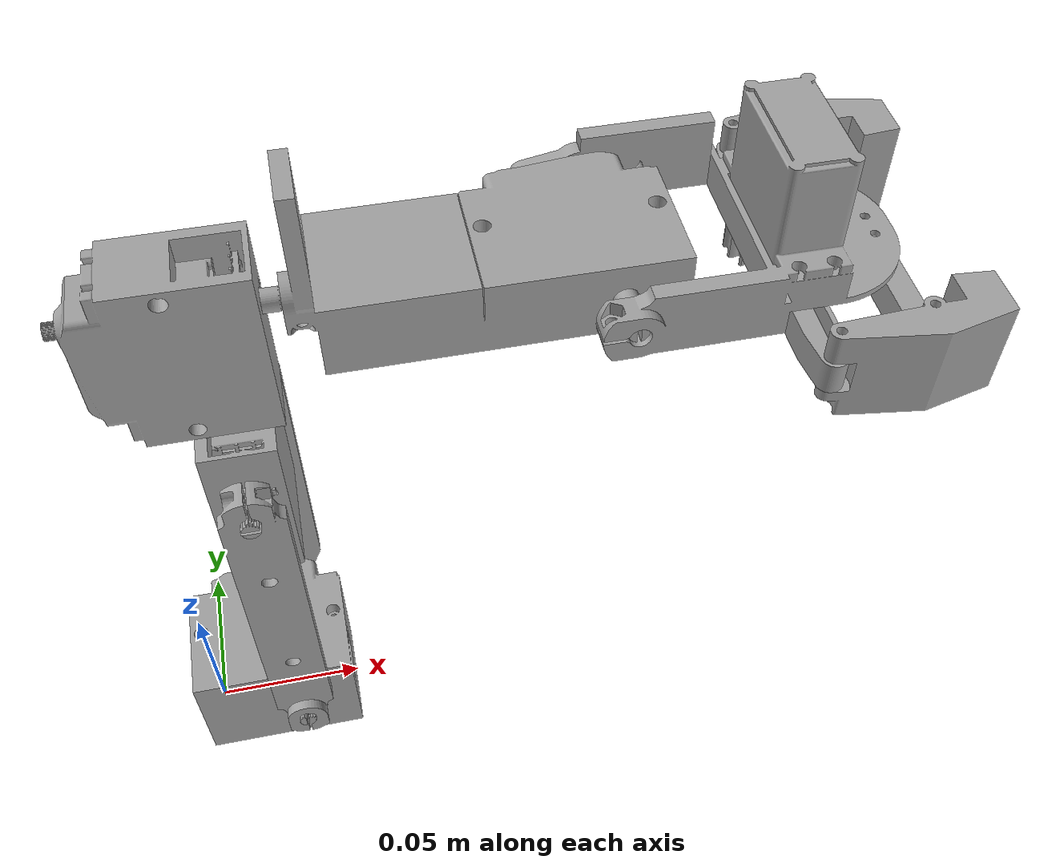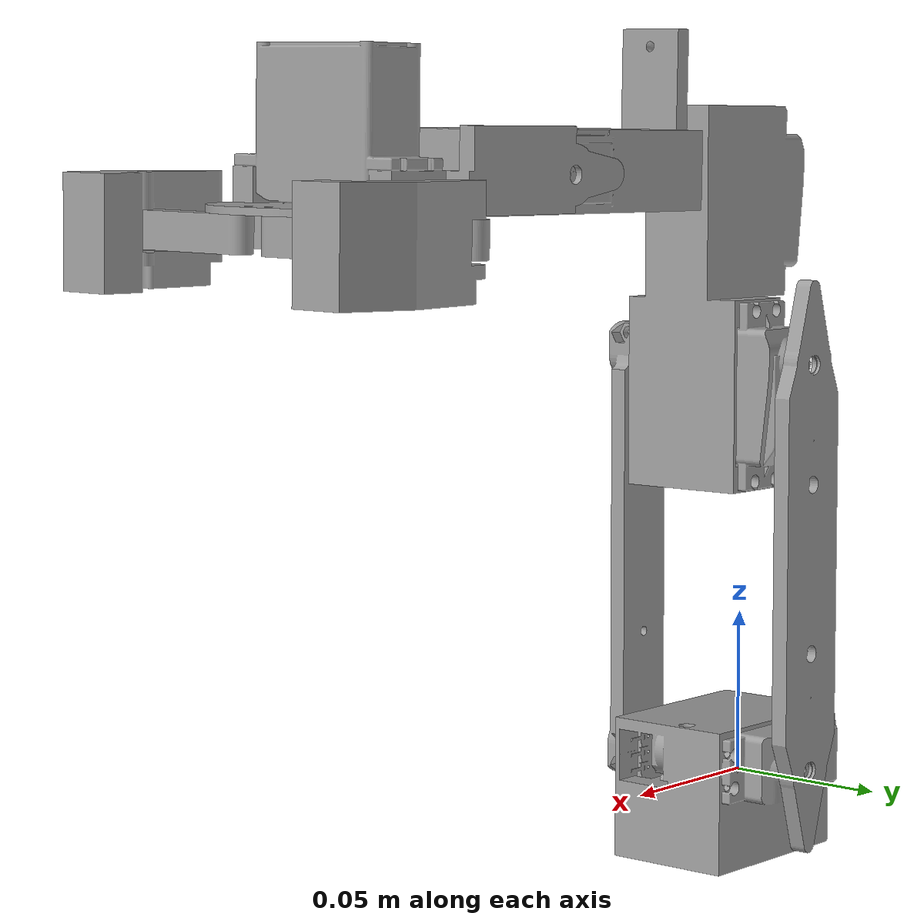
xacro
<?xml version="1.0" ?>
<robot name="another" xmlns:xacro="http://www.ros.org/wiki/xacro">

<xacro:include filename="$(find another_description)/urdf/materials.xacro" />
<xacro:include filename="$(find another_description)/urdf/another.trans" />
<link name="base_link">
  <inertial>
    <origin xyz="0.019733884415405266 0.012767671255082394 0.0010315109673221421" rpy="0 0 0"/>
    <mass value="0.7278674171502194"/>
    <inertia ixx="0.000229" iyy="0.000295" izz="0.000304" ixy="-6e-06" iyz="-2.9e-05" ixz="4e-06"/>
  </inertial>
  <visual>
    <origin xyz="0 0 0" rpy="0 0 0"/>
    <geometry>
      <mesh filename="package://another_description/meshes/base_link.stl" scale="0.001 0.001 0.001"/>
    </geometry>
    <material name="steel_satin"/>
  </visual>
  <collision>
    <origin xyz="0 0 0" rpy="0 0 0"/>
    <geometry>
      <mesh filename="package://another_description/meshes/base_link.stl" scale="0.001 0.001 0.001"/>
    </geometry>
  </collision>
</link>

<link name="new_lower_arm_v6_1">
  <inertial>
    <origin xyz="2.703196100330152e-07 -0.0003831445493740829 0.06000000059604365" rpy="0 0 0"/>
    <mass value="0.11820801114034465"/>
    <inertia ixx="0.000172" iyy="0.000178" izz="6e-06" ixy="0.0" iyz="0.0" ixz="-0.0"/>
  </inertial>
  <visual>
    <origin xyz="-0.030261 -0.04575 -0.01115" rpy="0 0 0"/>
    <geometry>
      <mesh filename="package://another_description/meshes/new_lower_arm_v6_1.stl" scale="0.001 0.001 0.001"/>
    </geometry>
    <material name="steel_satin"/>
  </visual>
  <collision>
    <origin xyz="-0.030261 -0.04575 -0.01115" rpy="0 0 0"/>
    <geometry>
      <mesh filename="package://another_description/meshes/new_lower_arm_v6_1.stl" scale="0.001 0.001 0.001"/>
    </geometry>
  </collision>
</link>

<link name="another_together_v2_1">
  <inertial>
    <origin xyz="-0.006329298038472136 -0.033871597503791484 0.017247108596952998" rpy="0 0 0"/>
    <mass value="0.7593142998563164"/>
    <inertia ixx="0.000885" iyy="0.000906" izz="0.000201" ixy="-1.7e-05" iyz="6.7e-05" ixz="0.000143"/>
  </inertial>
  <visual>
    <origin xyz="-0.030261 -0.04575 -0.13115" rpy="0 0 0"/>
    <geometry>
      <mesh filename="package://another_description/meshes/another_together_v2_1.stl" scale="0.001 0.001 0.001"/>
    </geometry>
    <material name="steel_satin"/>
  </visual>
  <collision>
    <origin xyz="-0.030261 -0.04575 -0.13115" rpy="0 0 0"/>
    <geometry>
      <mesh filename="package://another_description/meshes/another_together_v2_1.stl" scale="0.001 0.001 0.001"/>
    </geometry>
  </collision>
</link>

<link name="another_forearm_v1_1">
  <inertial>
    <origin xyz="0.05291626354016388 0.0040632698862958175 0.0006884554158932688" rpy="0 0 0"/>
    <mass value="0.713224415028411"/>
    <inertia ixx="0.000159" iyy="0.000672" izz="0.000741" ixy="-7.6e-05" iyz="4e-06" ixz="3.1e-05"/>
  </inertial>
  <visual>
    <origin xyz="-0.052261 -0.008302 -0.18775" rpy="0 0 0"/>
    <geometry>
      <mesh filename="package://another_description/meshes/another_forearm_v1_1.stl" scale="0.001 0.001 0.001"/>
    </geometry>
    <material name="steel_satin"/>
  </visual>
  <collision>
    <origin xyz="-0.052261 -0.008302 -0.18775" rpy="0 0 0"/>
    <geometry>
      <mesh filename="package://another_description/meshes/another_forearm_v1_1.stl" scale="0.001 0.001 0.001"/>
    </geometry>
  </collision>
</link>

<link name="lower_arm_pot_v5_1">
  <inertial>
    <origin xyz="1.1084729114881064e-05 -0.06278906355823505 0.05999995404203327" rpy="0 0 0"/>
    <mass value="0.10368770449070258"/>
    <inertia ixx="0.000156" iyy="0.000158" izz="4e-06" ixy="0.0" iyz="0.0" ixz="-0.0"/>
  </inertial>
  <visual>
    <origin xyz="-0.030261 -0.04575 -0.01115" rpy="0 0 0"/>
    <geometry>
      <mesh filename="package://another_description/meshes/lower_arm_pot_v5_1.stl" scale="0.001 0.001 0.001"/>
    </geometry>
    <material name="steel_satin"/>
  </visual>
  <collision>
    <origin xyz="-0.030261 -0.04575 -0.01115" rpy="0 0 0"/>
    <geometry>
      <mesh filename="package://another_description/meshes/lower_arm_pot_v5_1.stl" scale="0.001 0.001 0.001"/>
    </geometry>
  </collision>
</link>

<link name="bottom_v2_1">
  <inertial>
    <origin xyz="0.048721431942784166 0.022326085451289022 -0.01276485359087029" rpy="0 0 0"/>
    <mass value="0.4304093612318312"/>
    <inertia ixx="0.002142" iyy="0.001809" izz="0.000609" ixy="9.7e-05" iyz="-0.000729" ixz="0.000203"/>
  </inertial>
  <visual>
    <origin xyz="-0.1402 0.018693 -0.188247" rpy="0 0 0"/>
    <geometry>
      <mesh filename="package://another_description/meshes/bottom_v2_1.stl" scale="0.001 0.001 0.001"/>
    </geometry>
    <material name="steel_satin"/>
  </visual>
  <collision>
    <origin xyz="-0.1402 0.018693 -0.188247" rpy="0 0 0"/>
    <geometry>
      <mesh filename="package://another_description/meshes/bottom_v2_1.stl" scale="0.001 0.001 0.001"/>
    </geometry>
  </collision>
</link>

<link name="Jaw_top_v27_1">
  <inertial>
    <origin xyz="-1.7811781216625633e-09 0.011351372106049602 -0.005246563597032516" rpy="0 0 0"/>
    <mass value="0.04310244764976378"/>
    <inertia ixx="8e-06" iyy="1e-06" izz="8e-06" ixy="-0.0" iyz="0.0" ixz="0.0"/>
  </inertial>
  <visual>
    <origin xyz="-0.1923 -0.023115 -0.177476" rpy="0 0 0"/>
    <geometry>
      <mesh filename="package://another_description/meshes/Jaw_top_v27_1.stl" scale="0.001 0.001 0.001"/>
    </geometry>
    <material name="steel_satin"/>
  </visual>
  <collision>
    <origin xyz="-0.1923 -0.023115 -0.177476" rpy="0 0 0"/>
    <geometry>
      <mesh filename="package://another_description/meshes/Jaw_top_v27_1.stl" scale="0.001 0.001 0.001"/>
    </geometry>
  </collision>
</link>

<link name="Jaw_top_v23_1">
  <inertial>
    <origin xyz="9.326413427657165e-08 -0.013010663564929446 -0.0028716338111308692" rpy="0 0 0"/>
    <mass value="0.029499910072782735"/>
    <inertia ixx="7e-06" iyy="1e-06" izz="7e-06" ixy="-0.0" iyz="0.0" ixz="-0.0"/>
  </inertial>
  <visual>
    <origin xyz="-0.1923 -0.002064 -0.174863" rpy="0 0 0"/>
    <geometry>
      <mesh filename="package://another_description/meshes/Jaw_top_v23_1.stl" scale="0.001 0.001 0.001"/>
    </geometry>
    <material name="steel_satin"/>
  </visual>
  <collision>
    <origin xyz="-0.1923 -0.002064 -0.174863" rpy="0 0 0"/>
    <geometry>
      <mesh filename="package://another_description/meshes/Jaw_top_v23_1.stl" scale="0.001 0.001 0.001"/>
    </geometry>
  </collision>
</link>

<link name="Left_Claw_v17_1">
  <inertial>
    <origin xyz="0.029512012113970254 0.0014809960971346667 -0.005309409534871301" rpy="0 0 0"/>
    <mass value="0.11917653511717206"/>
    <inertia ixx="1.2e-05" iyy="3.2e-05" izz="2.5e-05" ixy="-4e-06" iyz="-0.0" ixz="0.0"/>
  </inertial>
  <visual>
    <origin xyz="-0.1923 0.034017 -0.178528" rpy="0 0 0"/>
    <geometry>
      <mesh filename="package://another_description/meshes/Left_Claw_v17_1.stl" scale="0.001 0.001 0.001"/>
    </geometry>
    <material name="steel_satin"/>
  </visual>
  <collision>
    <origin xyz="-0.1923 0.034017 -0.178528" rpy="0 0 0"/>
    <geometry>
      <mesh filename="package://another_description/meshes/Left_Claw_v17_1.stl" scale="0.001 0.001 0.001"/>
    </geometry>
  </collision>
</link>

<link name="Right_Claw_v6_1">
  <inertial>
    <origin xyz="0.029511891745069047 -0.0016748855335407264 -0.005250768713266879" rpy="0 0 0"/>
    <mass value="0.11917653511717204"/>
    <inertia ixx="1.2e-05" iyy="3.2e-05" izz="2.5e-05" ixy="4e-06" iyz="-0.0" ixz="0.0"/>
  </inertial>
  <visual>
    <origin xyz="-0.1923 -0.058109 -0.176831" rpy="0 0 0"/>
    <geometry>
      <mesh filename="package://another_description/meshes/Right_Claw_v6_1.stl" scale="0.001 0.001 0.001"/>
    </geometry>
    <material name="steel_satin"/>
  </visual>
  <collision>
    <origin xyz="-0.1923 -0.058109 -0.176831" rpy="0 0 0"/>
    <geometry>
      <mesh filename="package://another_description/meshes/Right_Claw_v6_1.stl" scale="0.001 0.001 0.001"/>
    </geometry>
  </collision>
</link>

<link name="Helper_v12_1">
  <inertial>
    <origin xyz="2.5179922380491604e-07 0.01740487465200152 -0.0053215159135051315" rpy="0 0 0"/>
    <mass value="0.022811604845921114"/>
    <inertia ixx="3e-06" iyy="0.0" izz="3e-06" ixy="-0.0" iyz="0.0" ixz="-0.0"/>
  </inertial>
  <visual>
    <origin xyz="-0.220266 0.029577 -0.178446" rpy="0 0 0"/>
    <geometry>
      <mesh filename="package://another_description/meshes/Helper_v12_1.stl" scale="0.001 0.001 0.001"/>
    </geometry>
    <material name="steel_satin"/>
  </visual>
  <collision>
    <origin xyz="-0.220266 0.029577 -0.178446" rpy="0 0 0"/>
    <geometry>
      <mesh filename="package://another_description/meshes/Helper_v12_1.stl" scale="0.001 0.001 0.001"/>
    </geometry>
  </collision>
</link>

<link name="Helper_v12_2">
  <inertial>
    <origin xyz="1.3143032262519228e-07 -0.01758942262949937 -0.004677075576347112" rpy="0 0 0"/>
    <mass value="0.022811604845921114"/>
    <inertia ixx="3e-06" iyy="0.0" izz="3e-06" ixy="0.0" iyz="0.0" ixz="0.0"/>
  </inertial>
  <visual>
    <origin xyz="-0.220266 -0.05367 -0.176913" rpy="0 0 0"/>
    <geometry>
      <mesh filename="package://another_description/meshes/Helper_v12_2.stl" scale="0.001 0.001 0.001"/>
    </geometry>
    <material name="steel_satin"/>
  </visual>
  <collision>
    <origin xyz="-0.220266 -0.05367 -0.176913" rpy="0 0 0"/>
    <geometry>
      <mesh filename="package://another_description/meshes/Helper_v12_2.stl" scale="0.001 0.001 0.001"/>
    </geometry>
  </collision>
</link>

<joint name="Revolute 1" type="revolute">
  <origin xyz="0.030261 0.04575 0.01115" rpy="0 0 0"/>
  <parent link="base_link"/>
  <child link="new_lower_arm_v6_1"/>
  <axis xyz="-0.0 1.0 -0.0"/>
  <limit upper="-1.5707963268" lower="1.5707963268" effort="100" velocity="100"/>
</joint>

<joint name="Revolute 3" type="revolute">
  <origin xyz="0.0 0.0 0.12" rpy="0 0 0"/>
  <parent link="new_lower_arm_v6_1"/>
  <child link="another_together_v2_1"/>
  <axis xyz="-0.0 1.0 -0.0"/>
    <limit upper="-1.5707963268" lower="1.5707963268" effort="100" velocity="100"/>
</joint>

<joint name="Revolute 4" type="revolute">
  <origin xyz="0.022 -0.037448 0.0566" rpy="0 0 0"/>
  <parent link="another_together_v2_1"/>
  <child link="another_forearm_v1_1"/>
  <axis xyz="1.0 -0.0 0.0"/>
    <limit upper="-1.5707963268" lower="1.5707963268" effort="100" velocity="100"/>
</joint>

<joint name="Rigid 8" type="fixed">
  <origin xyz="0.0 0.0 0.0" rpy="0 0 0"/>
  <parent link="new_lower_arm_v6_1"/>
  <child link="lower_arm_pot_v5_1"/>
</joint>

<joint name="Revolute 9" type="revolute">
  <origin xyz="0.087939 -0.026995 0.000497" rpy="0 0 0"/>
  <parent link="another_forearm_v1_1"/>
  <child link="bottom_v2_1"/>
  <axis xyz="-0.0 -0.99983 0.018412"/>
    <limit upper="-1.5707963268" lower="1.5707963268" effort="100" velocity="100"/>
</joint>

<joint name="Revolute 10" type="continuous">
  <origin xyz="0.0521 0.041808 -0.010771" rpy="0 0 0"/>
  <parent link="bottom_v2_1"/>
  <child link="Jaw_top_v27_1"/>
  <axis xyz="-0.0 0.018412 0.99983"/>
</joint>

<joint name="Revolute 11" type="continuous">
  <origin xyz="0.0521 0.020757 -0.013384" rpy="0 0 0"/>
  <parent link="bottom_v2_1"/>
  <child link="Jaw_top_v23_1"/>
  <axis xyz="0.0 -0.018412 -0.99983"/>
</joint>

<joint name="Revolute 12" type="continuous">
  <origin xyz="0.0 -0.036081 0.003665" rpy="0 0 0"/>
  <parent link="Jaw_top_v23_1"/>
  <child link="Left_Claw_v17_1"/>
  <axis xyz="-0.0 0.018412 0.99983"/>
</joint>

<joint name="Revolute 13" type="continuous">
  <origin xyz="0.0 0.034994 -0.000645" rpy="0 0 0"/>
  <parent link="Jaw_top_v27_1"/>
  <child link="Right_Claw_v6_1"/>
  <axis xyz="-0.0 0.018412 0.99983"/>
</joint>

<joint name="Revolute 16" type="continuous">
  <origin xyz="0.027966 0.00444 -8.2e-05" rpy="0 0 0"/>
  <parent link="Left_Claw_v17_1"/>
  <child link="Helper_v12_1"/>
  <axis xyz="0.0 -0.018412 -0.99983"/>
</joint>

<joint name="Revolute 17" type="continuous">
  <origin xyz="0.027966 -0.004439 8.2e-05" rpy="0 0 0"/>
  <parent link="Right_Claw_v6_1"/>
  <child link="Helper_v12_2"/>
  <axis xyz="0.0 -0.018412 -0.99983"/>
</joint>

</robot>

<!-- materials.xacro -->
<robot name="another" xmlns:xacro="http://www.ros.org/wiki/xacro" >

<material name="silver_default">
  <color rgba="0.700 0.700 0.700 1.000"/>
</material>
<material name="steel_satin">
  <color rgba="0.6274509803921569 0.6274509803921569 0.6274509803921569 1.0"/>
</material>

</robot>
